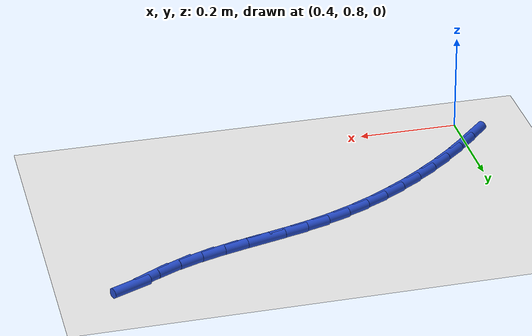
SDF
<sdf version="1.6">
 <world name="default">
  <model name="ground_plane">
   <static>1</static>
   <link name="link">
    <collision name="collision">
     <geometry><plane><normal>0 0 1</normal><size>100 100</size></plane></geometry>
     <surface><friction><ode><mu>100</mu><mu2>50</mu2></ode></friction></surface>
    </collision>
    <visual name="visual">
     <cast_shadows>0</cast_shadows>
     <geometry><plane><normal>0 0 1</normal><size>100 100</size></plane></geometry>
     <material>
      <script><uri>file://media/materials/scripts/gazebo.material</uri><name>Gazebo/WhiteGlow</name></script>
     </material>
    </visual>
   </link>
  </model>
  <model name="line">
   <link name="link_19">
    <pose>0.37936390282798504 0.8610778183150752 0.01 0 1.57 0.7836185452450082</pose>
    <collision name="collision">
     <geometry><cylinder><radius>0.01</radius><length>0.08</length></cylinder></geometry>
    </collision>
    <visual name="visual">
     <material>
      <script><name>Gazebo/Blue</name><uri>file://media/materials/scripts/gazebo.material</uri></script>
     </material>
     <geometry><cylinder><radius>0.01</radius><length>0.08</length></cylinder></geometry>
    </visual>
   </link>
   <link name="link_20">
    <pose>0.4155489619929125 0.8971343149602017 0.01 0 1.57 0.7421801828797588</pose>
    <collision name="collision">
     <geometry><cylinder><radius>0.01</radius><length>0.08</length></cylinder></geometry>
    </collision>
    <visual name="visual">
     <material>
      <script><name>Gazebo/Blue</name><uri>file://media/materials/scripts/gazebo.material</uri></script>
     </material>
     <geometry><cylinder><radius>0.01</radius><length>0.08</length></cylinder></geometry>
    </visual>
   </link>
   <link name="link_21">
    <pose>0.45298169543303957 0.9314637020937956 0.01 0 1.57 0.699130924770832</pose>
    <collision name="collision">
     <geometry><cylinder><radius>0.01</radius><length>0.08</length></cylinder></geometry>
    </collision>
    <visual name="visual">
     <material>
      <script><name>Gazebo/Blue</name><uri>file://media/materials/scripts/gazebo.material</uri></script>
     </material>
     <geometry><cylinder><radius>0.01</radius><length>0.08</length></cylinder></geometry>
    </visual>
   </link>
   <link name="link_22">
    <pose>0.4916122534996117 0.9639444231320248 0.01 0 1.57 0.6542983812639901</pose>
    <collision name="collision">
     <geometry><cylinder><radius>0.01</radius><length>0.08</length></cylinder></geometry>
    </collision>
    <visual name="visual">
     <material>
      <script><name>Gazebo/Blue</name><uri>file://media/materials/scripts/gazebo.material</uri></script>
     </material>
     <geometry><cylinder><radius>0.01</radius><length>0.08</length></cylinder></geometry>
    </visual>
   </link>
   <link name="link_23">
    <pose>0.5313907865438745 0.9944549214910569 0.01 0 1.57 0.6075181009555289</pose>
    <collision name="collision">
     <geometry><cylinder><radius>0.01</radius><length>0.08</length></cylinder></geometry>
    </collision>
    <visual name="visual">
     <material>
      <script><name>Gazebo/Blue</name><uri>file://media/materials/scripts/gazebo.material</uri></script>
     </material>
     <geometry><cylinder><radius>0.01</radius><length>0.08</length></cylinder></geometry>
    </visual>
   </link>
   <link name="link_24">
    <pose>0.5722674449170732 1.0228736405870595 0.01 0 1.57 0.558638755063652</pose>
    <collision name="collision">
     <geometry><cylinder><radius>0.01</radius><length>0.08</length></cylinder></geometry>
    </collision>
    <visual name="visual">
     <material>
      <script><name>Gazebo/Blue</name><uri>file://media/materials/scripts/gazebo.material</uri></script>
     </material>
     <geometry><cylinder><radius>0.01</radius><length>0.08</length></cylinder></geometry>
    </visual>
   </link>
   <link name="link_25">
    <pose>0.6141923789704536 1.0490790238362 0.01 0 1.57 0.5075288642562584</pose>
    <collision name="collision">
     <geometry><cylinder><radius>0.01</radius><length>0.08</length></cylinder></geometry>
    </collision>
    <visual name="visual">
     <material>
      <script><name>Gazebo/Blue</name><uri>file://media/materials/scripts/gazebo.material</uri></script>
     </material>
     <geometry><cylinder><radius>0.01</radius><length>0.08</length></cylinder></geometry>
    </visual>
   </link>
   <link name="link_26">
    <pose>0.6571157390552613 1.0729495146546468 0.01 0 1.57 0.45408512290063396</pose>
    <collision name="collision">
     <geometry><cylinder><radius>0.01</radius><length>0.08</length></cylinder></geometry>
    </collision>
    <visual name="visual">
     <material>
      <script><name>Gazebo/Blue</name><uri>file://media/materials/scripts/gazebo.material</uri></script>
     </material>
     <geometry><cylinder><radius>0.01</radius><length>0.08</length></cylinder></geometry>
    </visual>
   </link>
   <link name="link_27">
    <pose>0.7009876755227419 1.094363556458567 0.01 0 1.57 0.39824220094327667</pose>
    <collision name="collision">
     <geometry><cylinder><radius>0.01</radius><length>0.08</length></cylinder></geometry>
    </collision>
    <visual name="visual">
     <material>
      <script><name>Gazebo/Blue</name><uri>file://media/materials/scripts/gazebo.material</uri></script>
     </material>
     <geometry><cylinder><radius>0.01</radius><length>0.08</length></cylinder></geometry>
    </visual>
   </link>
   <link name="link_28">
    <pose>0.7457583387241407 1.1131995926641285 0.01 0 1.57 0.33998938854565464</pose>
    <collision name="collision">
     <geometry><cylinder><radius>0.01</radius><length>0.08</length></cylinder></geometry>
    </collision>
    <visual name="visual">
     <material>
      <script><name>Gazebo/Blue</name><uri>file://media/materials/scripts/gazebo.material</uri></script>
     </material>
     <geometry><cylinder><radius>0.01</radius><length>0.08</length></cylinder></geometry>
    </visual>
   </link>
   <link name="link_29">
    <pose>0.7913778397790959 1.1293363478838214 0.01 0 1.57 0.2854719786690997</pose>
    <collision name="collision">
     <geometry><cylinder><radius>0.01</radius><length>0.08</length></cylinder></geometry>
    </collision>
    <visual name="visual">
     <material>
      <script><name>Gazebo/Blue</name><uri>file://media/materials/scripts/gazebo.material</uri></script>
     </material>
     <geometry><cylinder><radius>0.01</radius><length>0.08</length></cylinder></geometry>
    </visual>
   </link>
   <link name="link_30">
    <pose>0.8377551340123212 1.1429475348503093 0.01 0 1.57 0.2526227878856352</pose>
    <collision name="collision">
     <geometry><cylinder><radius>0.01</radius><length>0.08</length></cylinder></geometry>
    </collision>
    <visual name="visual">
     <material>
      <script><name>Gazebo/Blue</name><uri>file://media/materials/scripts/gazebo.material</uri></script>
     </material>
     <geometry><cylinder><radius>0.01</radius><length>0.08</length></cylinder></geometry>
    </visual>
   </link>
   <link name="link_31">
    <pose>0.884680063338611 1.1550606231230875 0.01 0 1.57 0.24469522103837837</pose>
    <collision name="collision">
     <geometry><cylinder><radius>0.01</radius><length>0.08</length></cylinder></geometry>
    </collision>
    <visual name="visual">
     <material>
      <script><name>Gazebo/Blue</name><uri>file://media/materials/scripts/gazebo.material</uri></script>
     </material>
     <geometry><cylinder><radius>0.01</radius><length>0.08</length></cylinder></geometry>
    </visual>
   </link>
   <link name="link_32">
    <pose>0.9319210454154752 1.1668566426871954 0.01 0 1.57 0.2613885659430776</pose>
    <collision name="collision">
     <geometry><cylinder><radius>0.01</radius><length>0.08</length></cylinder></geometry>
    </collision>
    <visual name="visual">
     <material>
      <script><name>Gazebo/Blue</name><uri>file://media/materials/scripts/gazebo.material</uri></script>
     </material>
     <geometry><cylinder><radius>0.01</radius><length>0.08</length></cylinder></geometry>
    </visual>
   </link>
   <link name="link_33">
    <pose>0.9792464979004245 1.179516623527674 0.01 0 1.57 0.3021458956083174</pose>
    <collision name="collision">
     <geometry><cylinder><radius>0.01</radius><length>0.08</length></cylinder></geometry>
    </collision>
    <visual name="visual">
     <material>
      <script><name>Gazebo/Blue</name><uri>file://media/materials/scripts/gazebo.material</uri></script>
     </material>
     <geometry><cylinder><radius>0.01</radius><length>0.08</length></cylinder></geometry>
    </visual>
   </link>
   <link name="link_34">
    <pose>1.0264248384509695 1.194221595629563 0.01 0 1.57 0.3658912367599728</pose>
    <collision name="collision">
     <geometry><cylinder><radius>0.01</radius><length>0.08</length></cylinder></geometry>
    </collision>
    <visual name="visual">
     <material>
      <script><name>Gazebo/Blue</name><uri>file://media/materials/scripts/gazebo.material</uri></script>
     </material>
     <geometry><cylinder><radius>0.01</radius><length>0.08</length></cylinder></geometry>
    </visual>
   </link>
   <link name="link_35">
    <pose>1.07322448472462 1.2121525889779026 0.01 0 1.57 0.45043373220248306</pose>
    <collision name="collision">
     <geometry><cylinder><radius>0.01</radius><length>0.08</length></cylinder></geometry>
    </collision>
    <visual name="visual">
     <material>
      <script><name>Gazebo/Blue</name><uri>file://media/materials/scripts/gazebo.material</uri></script>
     </material>
     <geometry><cylinder><radius>0.01</radius><length>0.08</length></cylinder></geometry>
    </visual>
   </link>
   <link name="link_36">
    <pose>1.1194137487499283 1.2344892606172977 0.01 0 1.57 0.5115273436337617</pose>
    <collision name="collision">
     <geometry><cylinder><radius>0.01</radius><length>0.08</length></cylinder></geometry>
    </collision>
    <visual name="visual">
     <material>
      <script><name>Gazebo/Blue</name><uri>file://media/materials/scripts/gazebo.material</uri></script>
     </material>
     <geometry><cylinder><radius>0.01</radius><length>0.08</length></cylinder></geometry>
    </visual>
   </link>
   <link name="link_37">
    <pose>1.1645626818131107 1.2598343209549603 0.01 0 1.57 0.4160245701209329</pose>
    <collision name="collision">
     <geometry><cylinder><radius>0.01</radius><length>0.08</length></cylinder></geometry>
    </collision>
    <visual name="visual">
     <material>
      <script><name>Gazebo/Blue</name><uri>file://media/materials/scripts/gazebo.material</uri></script>
     </material>
     <geometry><cylinder><radius>0.01</radius><length>0.08</length></cylinder></geometry>
    </visual>
   </link>
  </model>
 </world>
</sdf>
